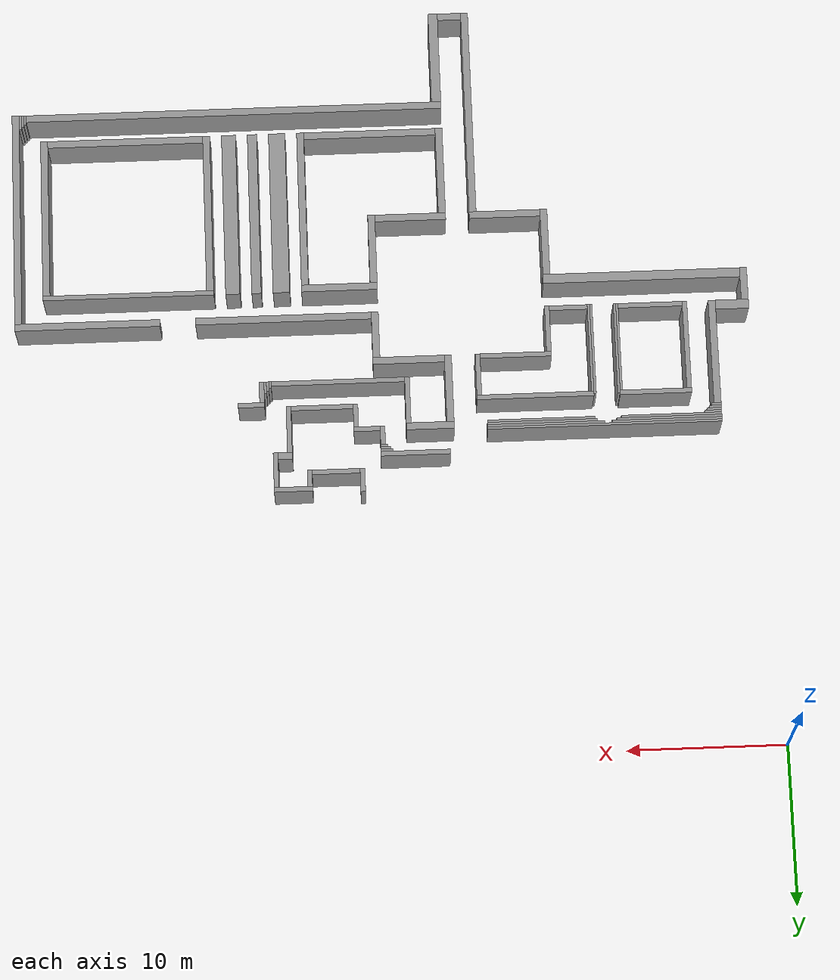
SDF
<sdf version="1.4">
 <model name="FunWorld1">
  <static>1</static>
  <link name="Wall_233">
   <collision name="Wall_233_Collision">
    <geometry><box><size>0.30000 1.50000 3.00000</size></box></geometry>
    <pose>25.65000 -17.55000 0 0 0 0.00000</pose>
   </collision>
   <visual name="Wall_233_Visual">
    <geometry><box><size>0.30000 1.50000 3.00000</size></box></geometry>
    <material>
     <script><uri>file://media/materials/scripts/gazebo.material</uri><name>Gazebo/Grey</name></script>
    </material>
    <pose>25.65000 -17.55000 0 0 0 0.00000</pose>
   </visual>
  </link>
  <link name="Wall_234">
   <collision name="Wall_234_Collision">
    <geometry><box><size>2.40000 0.30000 3.00000</size></box></geometry>
    <pose>30.00000 -17.10000 0 0 0 0.00000</pose>
   </collision>
   <visual name="Wall_234_Visual">
    <geometry><box><size>2.40000 0.30000 3.00000</size></box></geometry>
    <material>
     <script><uri>file://media/materials/scripts/gazebo.material</uri><name>Gazebo/Grey</name></script>
    </material>
    <pose>30.00000 -17.10000 0 0 0 0.00000</pose>
   </visual>
  </link>
  <link name="Wall_235">
   <collision name="Wall_235_Collision">
    <geometry><box><size>0.30000 1.05000 3.00000</size></box></geometry>
    <pose>28.95000 -17.77500 0 0 0 0.00000</pose>
   </collision>
   <visual name="Wall_235_Visual">
    <geometry><box><size>0.30000 1.05000 3.00000</size></box></geometry>
    <material>
     <script><uri>file://media/materials/scripts/gazebo.material</uri><name>Gazebo/Grey</name></script>
    </material>
    <pose>28.95000 -17.77500 0 0 0 0.00000</pose>
   </visual>
  </link>
  <link name="Wall_236">
   <collision name="Wall_236_Collision">
    <geometry><box><size>0.30000 2.25000 3.00000</size></box></geometry>
    <pose>31.05000 -18.37500 0 0 0 0.00000</pose>
   </collision>
   <visual name="Wall_236_Visual">
    <geometry><box><size>0.30000 2.25000 3.00000</size></box></geometry>
    <material>
     <script><uri>file://media/materials/scripts/gazebo.material</uri><name>Gazebo/Grey</name></script>
    </material>
    <pose>31.05000 -18.37500 0 0 0 0.00000</pose>
   </visual>
  </link>
  <link name="Wall_237">
   <collision name="Wall_237_Collision">
    <geometry><box><size>3.00000 0.30000 3.00000</size></box></geometry>
    <pose>27.30000 -18.15000 0 0 0 0.00000</pose>
   </collision>
   <visual name="Wall_237_Visual">
    <geometry><box><size>3.00000 0.30000 3.00000</size></box></geometry>
    <material>
     <script><uri>file://media/materials/scripts/gazebo.material</uri><name>Gazebo/Grey</name></script>
    </material>
    <pose>27.30000 -18.15000 0 0 0 0.00000</pose>
   </visual>
  </link>
  <link name="Wall_238">
   <collision name="Wall_238_Collision">
    <geometry><box><size>4.35000 0.30000 3.00000</size></box></geometry>
    <pose>22.27500 -19.20000 0 0 0 0.00000</pose>
   </collision>
   <visual name="Wall_238_Visual">
    <geometry><box><size>4.35000 0.30000 3.00000</size></box></geometry>
    <material>
     <script><uri>file://media/materials/scripts/gazebo.material</uri><name>Gazebo/Grey</name></script>
    </material>
    <pose>22.27500 -19.20000 0 0 0 0.00000</pose>
   </visual>
  </link>
  <link name="Wall_239">
   <collision name="Wall_239_Collision">
    <geometry><box><size>0.90000 0.45000 3.00000</size></box></geometry>
    <pose>30.45000 -19.27500 0 0 0 0.00000</pose>
   </collision>
   <visual name="Wall_239_Visual">
    <geometry><box><size>0.90000 0.45000 3.00000</size></box></geometry>
    <material>
     <script><uri>file://media/materials/scripts/gazebo.material</uri><name>Gazebo/Grey</name></script>
    </material>
    <pose>30.45000 -19.27500 0 0 0 0.00000</pose>
   </visual>
  </link>
  <link name="Wall_240">
   <collision name="Wall_240_Collision">
    <geometry><box><size>0.75000 0.15000 3.00000</size></box></geometry>
    <pose>24.07500 -19.42500 0 0 0 0.00000</pose>
   </collision>
   <visual name="Wall_240_Visual">
    <geometry><box><size>0.75000 0.15000 3.00000</size></box></geometry>
    <material>
     <script><uri>file://media/materials/scripts/gazebo.material</uri><name>Gazebo/Grey</name></script>
    </material>
    <pose>24.07500 -19.42500 0 0 0 0.00000</pose>
   </visual>
  </link>
  <link name="Wall_241">
   <collision name="Wall_241_Collision">
    <geometry><box><size>0.60000 0.15000 3.00000</size></box></geometry>
    <pose>24.15000 -19.57500 0 0 0 0.00000</pose>
   </collision>
   <visual name="Wall_241_Visual">
    <geometry><box><size>0.60000 0.15000 3.00000</size></box></geometry>
    <material>
     <script><uri>file://media/materials/scripts/gazebo.material</uri><name>Gazebo/Grey</name></script>
    </material>
    <pose>24.15000 -19.57500 0 0 0 0.00000</pose>
   </visual>
  </link>
  <link name="Wall_242">
   <collision name="Wall_242_Collision">
    <geometry><box><size>0.30000 3.00000 3.00000</size></box></geometry>
    <pose>30.15000 -21.00000 0 0 0 0.00000</pose>
   </collision>
   <visual name="Wall_242_Visual">
    <geometry><box><size>0.30000 3.00000 3.00000</size></box></geometry>
    <material>
     <script><uri>file://media/materials/scripts/gazebo.material</uri><name>Gazebo/Grey</name></script>
    </material>
    <pose>30.15000 -21.00000 0 0 0 0.00000</pose>
   </visual>
  </link>
  <link name="Wall_243">
   <collision name="Wall_243_Collision">
    <geometry><box><size>0.45000 0.15000 3.00000</size></box></geometry>
    <pose>24.22500 -19.72500 0 0 0 0.00000</pose>
   </collision>
   <visual name="Wall_243_Visual">
    <geometry><box><size>0.45000 0.15000 3.00000</size></box></geometry>
    <material>
     <script><uri>file://media/materials/scripts/gazebo.material</uri><name>Gazebo/Grey</name></script>
    </material>
    <pose>24.22500 -19.72500 0 0 0 0.00000</pose>
   </visual>
  </link>
  <link name="Wall_244">
   <collision name="Wall_244_Collision">
    <geometry><box><size>0.30000 1.20000 3.00000</size></box></geometry>
    <pose>24.30000 -20.40000 0 0 0 0.00000</pose>
   </collision>
   <visual name="Wall_244_Visual">
    <geometry><box><size>0.30000 1.20000 3.00000</size></box></geometry>
    <material>
     <script><uri>file://media/materials/scripts/gazebo.material</uri><name>Gazebo/Grey</name></script>
    </material>
    <pose>24.30000 -20.40000 0 0 0 0.00000</pose>
   </visual>
  </link>
  <link name="Wall_245">
   <collision name="Wall_245_Collision">
    <geometry><box><size>14.70000 0.15000 3.00000</size></box></geometry>
    <pose>10.35000 -20.62500 0 0 0 0.00000</pose>
   </collision>
   <visual name="Wall_245_Visual">
    <geometry><box><size>14.70000 0.15000 3.00000</size></box></geometry>
    <material>
     <script><uri>file://media/materials/scripts/gazebo.material</uri><name>Gazebo/Grey</name></script>
    </material>
    <pose>10.35000 -20.62500 0 0 0 0.00000</pose>
   </visual>
  </link>
  <link name="Wall_246">
   <collision name="Wall_246_Collision">
    <geometry><box><size>6.90000 0.15000 3.00000</size></box></geometry>
    <pose>6.45000 -20.77500 0 0 0 0.00000</pose>
   </collision>
   <visual name="Wall_246_Visual">
    <geometry><box><size>6.90000 0.15000 3.00000</size></box></geometry>
    <material>
     <script><uri>file://media/materials/scripts/gazebo.material</uri><name>Gazebo/Grey</name></script>
    </material>
    <pose>6.45000 -20.77500 0 0 0 0.00000</pose>
   </visual>
  </link>
  <link name="Wall_247">
   <collision name="Wall_247_Collision">
    <geometry><box><size>7.35000 0.15000 3.00000</size></box></geometry>
    <pose>14.02500 -20.77500 0 0 0 0.00000</pose>
   </collision>
   <visual name="Wall_247_Visual">
    <geometry><box><size>7.35000 0.15000 3.00000</size></box></geometry>
    <material>
     <script><uri>file://media/materials/scripts/gazebo.material</uri><name>Gazebo/Grey</name></script>
    </material>
    <pose>14.02500 -20.77500 0 0 0 0.00000</pose>
   </visual>
  </link>
  <link name="Wall_248">
   <collision name="Wall_248_Collision">
    <geometry><box><size>3.00000 0.45000 3.00000</size></box></geometry>
    <pose>21.30000 -20.92500 0 0 0 0.00000</pose>
   </collision>
   <visual name="Wall_248_Visual">
    <geometry><box><size>3.00000 0.45000 3.00000</size></box></geometry>
    <material>
     <script><uri>file://media/materials/scripts/gazebo.material</uri><name>Gazebo/Grey</name></script>
    </material>
    <pose>21.30000 -20.92500 0 0 0 0.00000</pose>
   </visual>
  </link>
  <link name="Wall_249">
   <collision name="Wall_249_Collision">
    <geometry><box><size>1.65000 0.30000 3.00000</size></box></geometry>
    <pose>25.27500 -20.85000 0 0 0 0.00000</pose>
   </collision>
   <visual name="Wall_249_Visual">
    <geometry><box><size>1.65000 0.30000 3.00000</size></box></geometry>
    <material>
     <script><uri>file://media/materials/scripts/gazebo.material</uri><name>Gazebo/Grey</name></script>
    </material>
    <pose>25.27500 -20.85000 0 0 0 0.00000</pose>
   </visual>
  </link>
  <link name="Wall_250">
   <collision name="Wall_250_Collision">
    <geometry><box><size>6.60000 0.15000 3.00000</size></box></geometry>
    <pose>6.30000 -20.92500 0 0 0 0.00000</pose>
   </collision>
   <visual name="Wall_250_Visual">
    <geometry><box><size>6.60000 0.15000 3.00000</size></box></geometry>
    <material>
     <script><uri>file://media/materials/scripts/gazebo.material</uri><name>Gazebo/Grey</name></script>
    </material>
    <pose>6.30000 -20.92500 0 0 0 0.00000</pose>
   </visual>
  </link>
  <link name="Wall_251">
   <collision name="Wall_251_Collision">
    <geometry><box><size>6.90000 0.15000 3.00000</size></box></geometry>
    <pose>14.25000 -20.92500 0 0 0 0.00000</pose>
   </collision>
   <visual name="Wall_251_Visual">
    <geometry><box><size>6.90000 0.15000 3.00000</size></box></geometry>
    <material>
     <script><uri>file://media/materials/scripts/gazebo.material</uri><name>Gazebo/Grey</name></script>
    </material>
    <pose>14.25000 -20.92500 0 0 0 0.00000</pose>
   </visual>
  </link>
  <link name="Wall_252">
   <collision name="Wall_252_Collision">
    <geometry><box><size>6.30000 0.15000 3.00000</size></box></geometry>
    <pose>6.15000 -21.07500 0 0 0 0.00000</pose>
   </collision>
   <visual name="Wall_252_Visual">
    <geometry><box><size>6.30000 0.15000 3.00000</size></box></geometry>
    <material>
     <script><uri>file://media/materials/scripts/gazebo.material</uri><name>Gazebo/Grey</name></script>
    </material>
    <pose>6.15000 -21.07500 0 0 0 0.00000</pose>
   </visual>
  </link>
  <link name="Wall_253">
   <collision name="Wall_253_Collision">
    <geometry><box><size>6.75000 0.15000 3.00000</size></box></geometry>
    <pose>14.32500 -21.07500 0 0 0 0.00000</pose>
   </collision>
   <visual name="Wall_253_Visual">
    <geometry><box><size>6.75000 0.15000 3.00000</size></box></geometry>
    <material>
     <script><uri>file://media/materials/scripts/gazebo.material</uri><name>Gazebo/Grey</name></script>
    </material>
    <pose>14.32500 -21.07500 0 0 0 0.00000</pose>
   </visual>
  </link>
  <link name="Wall_254">
   <collision name="Wall_254_Collision">
    <geometry><box><size>0.30000 1.50000 3.00000</size></box></geometry>
    <pose>25.95000 -21.75000 0 0 0 0.00000</pose>
   </collision>
   <visual name="Wall_254_Visual">
    <geometry><box><size>0.30000 1.50000 3.00000</size></box></geometry>
    <material>
     <script><uri>file://media/materials/scripts/gazebo.material</uri><name>Gazebo/Grey</name></script>
    </material>
    <pose>25.95000 -21.75000 0 0 0 0.00000</pose>
   </visual>
  </link>
  <link name="Wall_255">
   <collision name="Wall_255_Collision">
    <geometry><box><size>1.05000 0.15000 3.00000</size></box></geometry>
    <pose>3.52500 -21.22500 0 0 0 0.00000</pose>
   </collision>
   <visual name="Wall_255_Visual">
    <geometry><box><size>1.05000 0.15000 3.00000</size></box></geometry>
    <material>
     <script><uri>file://media/materials/scripts/gazebo.material</uri><name>Gazebo/Grey</name></script>
    </material>
    <pose>3.52500 -21.22500 0 0 0 0.00000</pose>
   </visual>
  </link>
  <link name="Wall_256">
   <collision name="Wall_256_Collision">
    <geometry><box><size>0.45000 4.35000 3.00000</size></box></geometry>
    <pose>20.02500 -23.32500 0 0 0 0.00000</pose>
   </collision>
   <visual name="Wall_256_Visual">
    <geometry><box><size>0.45000 4.35000 3.00000</size></box></geometry>
    <material>
     <script><uri>file://media/materials/scripts/gazebo.material</uri><name>Gazebo/Grey</name></script>
    </material>
    <pose>20.02500 -23.32500 0 0 0 0.00000</pose>
   </visual>
  </link>
  <link name="Wall_257">
   <collision name="Wall_257_Collision">
    <geometry><box><size>0.30000 3.00000 3.00000</size></box></geometry>
    <pose>22.65000 -22.65000 0 0 0 0.00000</pose>
   </collision>
   <visual name="Wall_257_Visual">
    <geometry><box><size>0.30000 3.00000 3.00000</size></box></geometry>
    <material>
     <script><uri>file://media/materials/scripts/gazebo.material</uri><name>Gazebo/Grey</name></script>
    </material>
    <pose>22.65000 -22.65000 0 0 0 0.00000</pose>
   </visual>
  </link>
  <link name="Wall_258">
   <collision name="Wall_258_Collision">
    <geometry><box><size>0.90000 0.15000 3.00000</size></box></geometry>
    <pose>3.45000 -21.37500 0 0 0 0.00000</pose>
   </collision>
   <visual name="Wall_258_Visual">
    <geometry><box><size>0.90000 0.15000 3.00000</size></box></geometry>
    <material>
     <script><uri>file://media/materials/scripts/gazebo.material</uri><name>Gazebo/Grey</name></script>
    </material>
    <pose>3.45000 -21.37500 0 0 0 0.00000</pose>
   </visual>
  </link>
  <link name="Wall_259">
   <collision name="Wall_259_Collision">
    <geometry><box><size>0.75000 0.15000 3.00000</size></box></geometry>
    <pose>3.37500 -21.52500 0 0 0 0.00000</pose>
   </collision>
   <visual name="Wall_259_Visual">
    <geometry><box><size>0.75000 0.15000 3.00000</size></box></geometry>
    <material>
     <script><uri>file://media/materials/scripts/gazebo.material</uri><name>Gazebo/Grey</name></script>
    </material>
    <pose>3.37500 -21.52500 0 0 0 0.00000</pose>
   </visual>
  </link>
  <link name="Wall_260">
   <collision name="Wall_260_Collision">
    <geometry><box><size>0.60000 0.15000 3.00000</size></box></geometry>
    <pose>3.30000 -21.67500 0 0 0 0.00000</pose>
   </collision>
   <visual name="Wall_260_Visual">
    <geometry><box><size>0.60000 0.15000 3.00000</size></box></geometry>
    <material>
     <script><uri>file://media/materials/scripts/gazebo.material</uri><name>Gazebo/Grey</name></script>
    </material>
    <pose>3.30000 -21.67500 0 0 0 0.00000</pose>
   </visual>
  </link>
  <link name="Wall_261">
   <collision name="Wall_261_Collision">
    <geometry><box><size>0.45000 6.75000 3.00000</size></box></geometry>
    <pose>3.22500 -25.12500 0 0 0 0.00000</pose>
   </collision>
   <visual name="Wall_261_Visual">
    <geometry><box><size>0.45000 6.75000 3.00000</size></box></geometry>
    <material>
     <script><uri>file://media/materials/scripts/gazebo.material</uri><name>Gazebo/Grey</name></script>
    </material>
    <pose>3.22500 -25.12500 0 0 0 0.00000</pose>
   </visual>
  </link>
  <link name="Wall_262">
   <collision name="Wall_262_Collision">
    <geometry><box><size>3.90000 0.30000 3.00000</size></box></geometry>
    <pose>28.05000 -22.35000 0 0 0 0.00000</pose>
   </collision>
   <visual name="Wall_262_Visual">
    <geometry><box><size>3.90000 0.30000 3.00000</size></box></geometry>
    <material>
     <script><uri>file://media/materials/scripts/gazebo.material</uri><name>Gazebo/Grey</name></script>
    </material>
    <pose>28.05000 -22.35000 0 0 0 0.00000</pose>
   </visual>
  </link>
  <link name="Wall_263">
   <collision name="Wall_263_Collision">
    <geometry><box><size>4.50000 0.30000 3.00000</size></box></geometry>
    <pose>7.05000 -22.65000 0 0 0 0.00000</pose>
   </collision>
   <visual name="Wall_263_Visual">
    <geometry><box><size>4.50000 0.30000 3.00000</size></box></geometry>
    <material>
     <script><uri>file://media/materials/scripts/gazebo.material</uri><name>Gazebo/Grey</name></script>
    </material>
    <pose>7.05000 -22.65000 0 0 0 0.00000</pose>
   </visual>
  </link>
  <link name="Wall_264">
   <collision name="Wall_264_Collision">
    <geometry><box><size>7.35000 0.30000 3.00000</size></box></geometry>
    <pose>14.62500 -22.65000 0 0 0 0.00000</pose>
   </collision>
   <visual name="Wall_264_Visual">
    <geometry><box><size>7.35000 0.30000 3.00000</size></box></geometry>
    <material>
     <script><uri>file://media/materials/scripts/gazebo.material</uri><name>Gazebo/Grey</name></script>
    </material>
    <pose>14.62500 -22.65000 0 0 0 0.00000</pose>
   </visual>
  </link>
  <link name="Wall_265">
   <collision name="Wall_265_Collision">
    <geometry><box><size>1.65000 0.30000 3.00000</size></box></geometry>
    <pose>32.47500 -22.65000 0 0 0 0.00000</pose>
   </collision>
   <visual name="Wall_265_Visual">
    <geometry><box><size>1.65000 0.30000 3.00000</size></box></geometry>
    <material>
     <script><uri>file://media/materials/scripts/gazebo.material</uri><name>Gazebo/Grey</name></script>
    </material>
    <pose>32.47500 -22.65000 0 0 0 0.00000</pose>
   </visual>
  </link>
  <link name="Wall_266">
   <collision name="Wall_266_Collision">
    <geometry><box><size>0.15000 5.85000 3.00000</size></box></geometry>
    <pose>9.37500 -25.57500 0 0 0 0.00000</pose>
   </collision>
   <visual name="Wall_266_Visual">
    <geometry><box><size>0.15000 5.85000 3.00000</size></box></geometry>
    <material>
     <script><uri>file://media/materials/scripts/gazebo.material</uri><name>Gazebo/Grey</name></script>
    </material>
    <pose>9.37500 -25.57500 0 0 0 0.00000</pose>
   </visual>
  </link>
  <link name="Wall_267">
   <collision name="Wall_267_Collision">
    <geometry><box><size>0.15000 5.85000 3.00000</size></box></geometry>
    <pose>10.87500 -25.57500 0 0 0 0.00000</pose>
   </collision>
   <visual name="Wall_267_Visual">
    <geometry><box><size>0.15000 5.85000 3.00000</size></box></geometry>
    <material>
     <script><uri>file://media/materials/scripts/gazebo.material</uri><name>Gazebo/Grey</name></script>
    </material>
    <pose>10.87500 -25.57500 0 0 0 0.00000</pose>
   </visual>
  </link>
  <link name="Wall_268">
   <collision name="Wall_268_Collision">
    <geometry><box><size>0.30000 5.70000 3.00000</size></box></geometry>
    <pose>4.95000 -25.65000 0 0 0 0.00000</pose>
   </collision>
   <visual name="Wall_268_Visual">
    <geometry><box><size>0.30000 5.70000 3.00000</size></box></geometry>
    <material>
     <script><uri>file://media/materials/scripts/gazebo.material</uri><name>Gazebo/Grey</name></script>
    </material>
    <pose>4.95000 -25.65000 0 0 0 0.00000</pose>
   </visual>
  </link>
  <link name="Wall_269">
   <collision name="Wall_269_Collision">
    <geometry><box><size>0.15000 5.70000 3.00000</size></box></geometry>
    <pose>9.22500 -25.65000 0 0 0 0.00000</pose>
   </collision>
   <visual name="Wall_269_Visual">
    <geometry><box><size>0.15000 5.70000 3.00000</size></box></geometry>
    <material>
     <script><uri>file://media/materials/scripts/gazebo.material</uri><name>Gazebo/Grey</name></script>
    </material>
    <pose>9.22500 -25.65000 0 0 0 0.00000</pose>
   </visual>
  </link>
  <link name="Wall_270">
   <collision name="Wall_270_Collision">
    <geometry><box><size>0.15000 5.70000 3.00000</size></box></geometry>
    <pose>11.02500 -25.65000 0 0 0 0.00000</pose>
   </collision>
   <visual name="Wall_270_Visual">
    <geometry><box><size>0.15000 5.70000 3.00000</size></box></geometry>
    <material>
     <script><uri>file://media/materials/scripts/gazebo.material</uri><name>Gazebo/Grey</name></script>
    </material>
    <pose>11.02500 -25.65000 0 0 0 0.00000</pose>
   </visual>
  </link>
  <link name="Wall_271">
   <collision name="Wall_271_Collision">
    <geometry><box><size>0.30000 2.70000 3.00000</size></box></geometry>
    <pose>18.15000 -24.15000 0 0 0 0.00000</pose>
   </collision>
   <visual name="Wall_271_Visual">
    <geometry><box><size>0.30000 2.70000 3.00000</size></box></geometry>
    <material>
     <script><uri>file://media/materials/scripts/gazebo.material</uri><name>Gazebo/Grey</name></script>
    </material>
    <pose>18.15000 -24.15000 0 0 0 0.00000</pose>
   </visual>
  </link>
  <link name="Wall_272">
   <collision name="Wall_272_Collision">
    <geometry><box><size>0.30000 1.35000 3.00000</size></box></geometry>
    <pose>31.80000 -23.47500 0 0 0 0.00000</pose>
   </collision>
   <visual name="Wall_272_Visual">
    <geometry><box><size>0.30000 1.35000 3.00000</size></box></geometry>
    <material>
     <script><uri>file://media/materials/scripts/gazebo.material</uri><name>Gazebo/Grey</name></script>
    </material>
    <pose>31.80000 -23.47500 0 0 0 0.00000</pose>
   </visual>
  </link>
  <link name="Wall_273">
   <collision name="Wall_273_Collision">
    <geometry><box><size>0.15000 0.75000 3.00000</size></box></geometry>
    <pose>31.57500 -23.77500 0 0 0 0.00000</pose>
   </collision>
   <visual name="Wall_273_Visual">
    <geometry><box><size>0.15000 0.75000 3.00000</size></box></geometry>
    <material>
     <script><uri>file://media/materials/scripts/gazebo.material</uri><name>Gazebo/Grey</name></script>
    </material>
    <pose>31.57500 -23.77500 0 0 0 0.00000</pose>
   </visual>
  </link>
  <link name="Wall_274">
   <collision name="Wall_274_Collision">
    <geometry><box><size>0.15000 0.60000 3.00000</size></box></geometry>
    <pose>31.42500 -23.85000 0 0 0 0.00000</pose>
   </collision>
   <visual name="Wall_274_Visual">
    <geometry><box><size>0.15000 0.60000 3.00000</size></box></geometry>
    <material>
     <script><uri>file://media/materials/scripts/gazebo.material</uri><name>Gazebo/Grey</name></script>
    </material>
    <pose>31.42500 -23.85000 0 0 0 0.00000</pose>
   </visual>
  </link>
  <link name="Wall_275">
   <collision name="Wall_275_Collision">
    <geometry><box><size>0.15000 0.45000 3.00000</size></box></geometry>
    <pose>31.27500 -23.92500 0 0 0 0.00000</pose>
   </collision>
   <visual name="Wall_275_Visual">
    <geometry><box><size>0.15000 0.45000 3.00000</size></box></geometry>
    <material>
     <script><uri>file://media/materials/scripts/gazebo.material</uri><name>Gazebo/Grey</name></script>
    </material>
    <pose>31.27500 -23.92500 0 0 0 0.00000</pose>
   </visual>
  </link>
  <link name="Wall_276">
   <collision name="Wall_276_Collision">
    <geometry><box><size>8.40000 0.30000 3.00000</size></box></geometry>
    <pose>27.00000 -24.00000 0 0 0 0.00000</pose>
   </collision>
   <visual name="Wall_276_Visual">
    <geometry><box><size>8.40000 0.30000 3.00000</size></box></geometry>
    <material>
     <script><uri>file://media/materials/scripts/gazebo.material</uri><name>Gazebo/Grey</name></script>
    </material>
    <pose>27.00000 -24.00000 0 0 0 0.00000</pose>
   </visual>
  </link>
  <link name="Wall_277">
   <collision name="Wall_277_Collision">
    <geometry><box><size>4.50000 0.45000 3.00000</size></box></geometry>
    <pose>22.50000 -25.27500 0 0 0 0.00000</pose>
   </collision>
   <visual name="Wall_277_Visual">
    <geometry><box><size>4.50000 0.45000 3.00000</size></box></geometry>
    <material>
     <script><uri>file://media/materials/scripts/gazebo.material</uri><name>Gazebo/Grey</name></script>
    </material>
    <pose>22.50000 -25.27500 0 0 0 0.00000</pose>
   </visual>
  </link>
  <link name="Wall_278">
   <collision name="Wall_278_Collision">
    <geometry><box><size>4.50000 0.30000 3.00000</size></box></geometry>
    <pose>15.75000 -25.35000 0 0 0 0.00000</pose>
   </collision>
   <visual name="Wall_278_Visual">
    <geometry><box><size>4.50000 0.30000 3.00000</size></box></geometry>
    <material>
     <script><uri>file://media/materials/scripts/gazebo.material</uri><name>Gazebo/Grey</name></script>
    </material>
    <pose>15.75000 -25.35000 0 0 0 0.00000</pose>
   </visual>
  </link>
  <link name="Wall_279">
   <collision name="Wall_279_Collision">
    <geometry><box><size>0.30000 3.00000 3.00000</size></box></geometry>
    <pose>13.65000 -27.00000 0 0 0 0.00000</pose>
   </collision>
   <visual name="Wall_279_Visual">
    <geometry><box><size>0.30000 3.00000 3.00000</size></box></geometry>
    <material>
     <script><uri>file://media/materials/scripts/gazebo.material</uri><name>Gazebo/Grey</name></script>
    </material>
    <pose>13.65000 -27.00000 0 0 0 0.00000</pose>
   </visual>
  </link>
  <link name="Wall_280">
   <collision name="Wall_280_Collision">
    <geometry><box><size>0.45000 3.00000 3.00000</size></box></geometry>
    <pose>24.52500 -27.00000 0 0 0 0.00000</pose>
   </collision>
   <visual name="Wall_280_Visual">
    <geometry><box><size>0.45000 3.00000 3.00000</size></box></geometry>
    <material>
     <script><uri>file://media/materials/scripts/gazebo.material</uri><name>Gazebo/Grey</name></script>
    </material>
    <pose>24.52500 -27.00000 0 0 0 0.00000</pose>
   </visual>
  </link>
  <link name="Wall_281">
   <collision name="Wall_281_Collision">
    <geometry><box><size>2.10000 0.60000 3.00000</size></box></geometry>
    <pose>1.95000 -28.20000 0 0 0 0.00000</pose>
   </collision>
   <visual name="Wall_281_Visual">
    <geometry><box><size>2.10000 0.60000 3.00000</size></box></geometry>
    <material>
     <script><uri>file://media/materials/scripts/gazebo.material</uri><name>Gazebo/Grey</name></script>
    </material>
    <pose>1.95000 -28.20000 0 0 0 0.00000</pose>
   </visual>
  </link>
  <link name="Wall_282">
   <collision name="Wall_282_Collision">
    <geometry><box><size>11.10000 0.45000 3.00000</size></box></geometry>
    <pose>30.30000 -28.27500 0 0 0 0.00000</pose>
   </collision>
   <visual name="Wall_282_Visual">
    <geometry><box><size>11.10000 0.45000 3.00000</size></box></geometry>
    <material>
     <script><uri>file://media/materials/scripts/gazebo.material</uri><name>Gazebo/Grey</name></script>
    </material>
    <pose>30.30000 -28.27500 0 0 0 0.00000</pose>
   </visual>
  </link>
  <link name="Wall_283">
   <collision name="Wall_283_Collision">
    <geometry><box><size>9.15000 0.45000 3.00000</size></box></geometry>
    <pose>42.67500 -28.27500 0 0 0 0.00000</pose>
   </collision>
   <visual name="Wall_283_Visual">
    <geometry><box><size>9.15000 0.45000 3.00000</size></box></geometry>
    <material>
     <script><uri>file://media/materials/scripts/gazebo.material</uri><name>Gazebo/Grey</name></script>
    </material>
    <pose>42.67500 -28.27500 0 0 0 0.00000</pose>
   </visual>
  </link>
  <link name="Wall_284">
   <collision name="Wall_284_Collision">
    <geometry><box><size>4.05000 0.30000 3.00000</size></box></geometry>
    <pose>7.12500 -28.35000 0 0 0 0.00000</pose>
   </collision>
   <visual name="Wall_284_Visual">
    <geometry><box><size>4.05000 0.30000 3.00000</size></box></geometry>
    <material>
     <script><uri>file://media/materials/scripts/gazebo.material</uri><name>Gazebo/Grey</name></script>
    </material>
    <pose>7.12500 -28.35000 0 0 0 0.00000</pose>
   </visual>
  </link>
  <link name="Wall_285">
   <collision name="Wall_285_Collision">
    <geometry><box><size>2.40000 0.30000 3.00000</size></box></geometry>
    <pose>12.30000 -28.35000 0 0 0 0.00000</pose>
   </collision>
   <visual name="Wall_285_Visual">
    <geometry><box><size>2.40000 0.30000 3.00000</size></box></geometry>
    <material>
     <script><uri>file://media/materials/scripts/gazebo.material</uri><name>Gazebo/Grey</name></script>
    </material>
    <pose>12.30000 -28.35000 0 0 0 0.00000</pose>
   </visual>
  </link>
  <link name="Wall_286">
   <collision name="Wall_286_Collision">
    <geometry><box><size>0.45000 2.10000 3.00000</size></box></geometry>
    <pose>1.12500 -29.55000 0 0 0 0.00000</pose>
   </collision>
   <visual name="Wall_286_Visual">
    <geometry><box><size>0.45000 2.10000 3.00000</size></box></geometry>
    <material>
     <script><uri>file://media/materials/scripts/gazebo.material</uri><name>Gazebo/Grey</name></script>
    </material>
    <pose>1.12500 -29.55000 0 0 0 0.00000</pose>
   </visual>
  </link>
  <link name="Wall_287">
   <collision name="Wall_287_Collision">
    <geometry><box><size>0.45000 13.95000 3.00000</size></box></geometry>
    <pose>47.02500 -35.47500 0 0 0 0.00000</pose>
   </collision>
   <visual name="Wall_287_Visual">
    <geometry><box><size>0.45000 13.95000 3.00000</size></box></geometry>
    <material>
     <script><uri>file://media/materials/scripts/gazebo.material</uri><name>Gazebo/Grey</name></script>
    </material>
    <pose>47.02500 -35.47500 0 0 0 0.00000</pose>
   </visual>
  </link>
  <link name="Wall_288">
   <collision name="Wall_288_Collision">
    <geometry><box><size>12.45000 0.60000 3.00000</size></box></geometry>
    <pose>7.57500 -30.30000 0 0 0 0.00000</pose>
   </collision>
   <visual name="Wall_288_Visual">
    <geometry><box><size>12.45000 0.60000 3.00000</size></box></geometry>
    <material>
     <script><uri>file://media/materials/scripts/gazebo.material</uri><name>Gazebo/Grey</name></script>
    </material>
    <pose>7.57500 -30.30000 0 0 0 0.00000</pose>
   </visual>
  </link>
  <link name="Wall_289">
   <collision name="Wall_289_Collision">
    <geometry><box><size>4.80000 0.45000 3.00000</size></box></geometry>
    <pose>26.70000 -30.22500 0 0 0 0.00000</pose>
   </collision>
   <visual name="Wall_289_Visual">
    <geometry><box><size>4.80000 0.45000 3.00000</size></box></geometry>
    <material>
     <script><uri>file://media/materials/scripts/gazebo.material</uri><name>Gazebo/Grey</name></script>
    </material>
    <pose>26.70000 -30.22500 0 0 0 0.00000</pose>
   </visual>
  </link>
  <link name="Wall_290">
   <collision name="Wall_290_Collision">
    <geometry><box><size>1.05000 10.65000 3.00000</size></box></geometry>
    <pose>30.37500 -35.32500 0 0 0 0.00000</pose>
   </collision>
   <visual name="Wall_290_Visual">
    <geometry><box><size>1.05000 10.65000 3.00000</size></box></geometry>
    <material>
     <script><uri>file://media/materials/scripts/gazebo.material</uri><name>Gazebo/Grey</name></script>
    </material>
    <pose>30.37500 -35.32500 0 0 0 0.00000</pose>
   </visual>
  </link>
  <link name="Wall_291">
   <collision name="Wall_291_Collision">
    <geometry><box><size>0.60000 10.65000 3.00000</size></box></geometry>
    <pose>31.95000 -35.32500 0 0 0 0.00000</pose>
   </collision>
   <visual name="Wall_291_Visual">
    <geometry><box><size>0.60000 10.65000 3.00000</size></box></geometry>
    <material>
     <script><uri>file://media/materials/scripts/gazebo.material</uri><name>Gazebo/Grey</name></script>
    </material>
    <pose>31.95000 -35.32500 0 0 0 0.00000</pose>
   </visual>
  </link>
  <link name="Wall_292">
   <collision name="Wall_292_Collision">
    <geometry><box><size>0.90000 10.65000 3.00000</size></box></geometry>
    <pose>33.45000 -35.32500 0 0 0 0.00000</pose>
   </collision>
   <visual name="Wall_292_Visual">
    <geometry><box><size>0.90000 10.65000 3.00000</size></box></geometry>
    <material>
     <script><uri>file://media/materials/scripts/gazebo.material</uri><name>Gazebo/Grey</name></script>
    </material>
    <pose>33.45000 -35.32500 0 0 0 0.00000</pose>
   </visual>
  </link>
  <link name="Wall_293">
   <collision name="Wall_293_Collision">
    <geometry><box><size>10.80000 0.30000 3.00000</size></box></geometry>
    <pose>40.05000 -30.15000 0 0 0 0.00000</pose>
   </collision>
   <visual name="Wall_293_Visual">
    <geometry><box><size>10.80000 0.30000 3.00000</size></box></geometry>
    <material>
     <script><uri>file://media/materials/scripts/gazebo.material</uri><name>Gazebo/Grey</name></script>
    </material>
    <pose>40.05000 -30.15000 0 0 0 0.00000</pose>
   </visual>
  </link>
  <link name="Wall_294">
   <collision name="Wall_294_Collision">
    <geometry><box><size>0.45000 10.35000 3.00000</size></box></geometry>
    <pose>34.87500 -35.47500 0 0 0 0.00000</pose>
   </collision>
   <visual name="Wall_294_Visual">
    <geometry><box><size>0.45000 10.35000 3.00000</size></box></geometry>
    <material>
     <script><uri>file://media/materials/scripts/gazebo.material</uri><name>Gazebo/Grey</name></script>
    </material>
    <pose>34.87500 -35.47500 0 0 0 0.00000</pose>
   </visual>
  </link>
  <link name="Wall_295">
   <collision name="Wall_295_Collision">
    <geometry><box><size>0.45000 10.35000 3.00000</size></box></geometry>
    <pose>45.22500 -35.47500 0 0 0 0.00000</pose>
   </collision>
   <visual name="Wall_295_Visual">
    <geometry><box><size>0.45000 10.35000 3.00000</size></box></geometry>
    <material>
     <script><uri>file://media/materials/scripts/gazebo.material</uri><name>Gazebo/Grey</name></script>
    </material>
    <pose>45.22500 -35.47500 0 0 0 0.00000</pose>
   </visual>
  </link>
  <link name="Wall_296">
   <collision name="Wall_296_Collision">
    <geometry><box><size>0.45000 4.50000 3.00000</size></box></geometry>
    <pose>24.52500 -32.70000 0 0 0 0.00000</pose>
   </collision>
   <visual name="Wall_296_Visual">
    <geometry><box><size>0.45000 4.50000 3.00000</size></box></geometry>
    <material>
     <script><uri>file://media/materials/scripts/gazebo.material</uri><name>Gazebo/Grey</name></script>
    </material>
    <pose>24.52500 -32.70000 0 0 0 0.00000</pose>
   </visual>
  </link>
  <link name="Wall_297">
   <collision name="Wall_297_Collision">
    <geometry><box><size>0.45000 10.20000 3.00000</size></box></geometry>
    <pose>28.87500 -35.55000 0 0 0 0.00000</pose>
   </collision>
   <visual name="Wall_297_Visual">
    <geometry><box><size>0.45000 10.20000 3.00000</size></box></geometry>
    <material>
     <script><uri>file://media/materials/scripts/gazebo.material</uri><name>Gazebo/Grey</name></script>
    </material>
    <pose>28.87500 -35.55000 0 0 0 0.00000</pose>
   </visual>
  </link>
  <link name="Wall_298">
   <collision name="Wall_298_Collision">
    <geometry><box><size>0.45000 4.35000 3.00000</size></box></geometry>
    <pose>13.57500 -32.77500 0 0 0 0.00000</pose>
   </collision>
   <visual name="Wall_298_Visual">
    <geometry><box><size>0.45000 4.35000 3.00000</size></box></geometry>
    <material>
     <script><uri>file://media/materials/scripts/gazebo.material</uri><name>Gazebo/Grey</name></script>
    </material>
    <pose>13.57500 -32.77500 0 0 0 0.00000</pose>
   </visual>
  </link>
  <link name="Wall_299">
   <collision name="Wall_299_Collision">
    <geometry><box><size>4.50000 0.45000 3.00000</size></box></geometry>
    <pose>16.05000 -34.72500 0 0 0 0.00000</pose>
   </collision>
   <visual name="Wall_299_Visual">
    <geometry><box><size>4.50000 0.45000 3.00000</size></box></geometry>
    <material>
     <script><uri>file://media/materials/scripts/gazebo.material</uri><name>Gazebo/Grey</name></script>
    </material>
    <pose>16.05000 -34.72500 0 0 0 0.00000</pose>
   </visual>
  </link>
  <link name="Wall_300">
   <collision name="Wall_300_Collision">
    <geometry><box><size>4.50000 0.45000 3.00000</size></box></geometry>
    <pose>22.05000 -34.72500 0 0 0 0.00000</pose>
   </collision>
   <visual name="Wall_300_Visual">
    <geometry><box><size>4.50000 0.45000 3.00000</size></box></geometry>
    <material>
     <script><uri>file://media/materials/scripts/gazebo.material</uri><name>Gazebo/Grey</name></script>
    </material>
    <pose>22.05000 -34.72500 0 0 0 0.00000</pose>
   </visual>
  </link>
  <link name="Wall_301">
   <collision name="Wall_301_Collision">
    <geometry><box><size>0.45000 13.50000 3.00000</size></box></geometry>
    <pose>18.07500 -41.70000 0 0 0 0.00000</pose>
   </collision>
   <visual name="Wall_301_Visual">
    <geometry><box><size>0.45000 13.50000 3.00000</size></box></geometry>
    <material>
     <script><uri>file://media/materials/scripts/gazebo.material</uri><name>Gazebo/Grey</name></script>
    </material>
    <pose>18.07500 -41.70000 0 0 0 0.00000</pose>
   </visual>
  </link>
  <link name="Wall_302">
   <collision name="Wall_302_Collision">
    <geometry><box><size>0.45000 5.70000 3.00000</size></box></geometry>
    <pose>20.02500 -37.80000 0 0 0 0.00000</pose>
   </collision>
   <visual name="Wall_302_Visual">
    <geometry><box><size>0.45000 5.70000 3.00000</size></box></geometry>
    <material>
     <script><uri>file://media/materials/scripts/gazebo.material</uri><name>Gazebo/Grey</name></script>
    </material>
    <pose>20.02500 -37.80000 0 0 0 0.00000</pose>
   </visual>
  </link>
  <link name="Wall_303">
   <collision name="Wall_303_Collision">
    <geometry><box><size>8.40000 0.45000 3.00000</size></box></geometry>
    <pose>24.45000 -40.42500 0 0 0 0.00000</pose>
   </collision>
   <visual name="Wall_303_Visual">
    <geometry><box><size>8.40000 0.45000 3.00000</size></box></geometry>
    <material>
     <script><uri>file://media/materials/scripts/gazebo.material</uri><name>Gazebo/Grey</name></script>
    </material>
    <pose>24.45000 -40.42500 0 0 0 0.00000</pose>
   </visual>
  </link>
  <link name="Wall_304">
   <collision name="Wall_304_Collision">
    <geometry><box><size>9.90000 0.45000 3.00000</size></box></geometry>
    <pose>40.05000 -40.42500 0 0 0 0.00000</pose>
   </collision>
   <visual name="Wall_304_Visual">
    <geometry><box><size>9.90000 0.45000 3.00000</size></box></geometry>
    <material>
     <script><uri>file://media/materials/scripts/gazebo.material</uri><name>Gazebo/Grey</name></script>
    </material>
    <pose>40.05000 -40.42500 0 0 0 0.00000</pose>
   </visual>
  </link>
  <link name="Wall_305">
   <collision name="Wall_305_Collision">
    <geometry><box><size>0.15000 0.90000 3.00000</size></box></geometry>
    <pose>46.72500 -42.00000 0 0 0 0.00000</pose>
   </collision>
   <visual name="Wall_305_Visual">
    <geometry><box><size>0.15000 0.90000 3.00000</size></box></geometry>
    <material>
     <script><uri>file://media/materials/scripts/gazebo.material</uri><name>Gazebo/Grey</name></script>
    </material>
    <pose>46.72500 -42.00000 0 0 0 0.00000</pose>
   </visual>
  </link>
  <link name="Wall_306">
   <collision name="Wall_306_Collision">
    <geometry><box><size>0.15000 0.75000 3.00000</size></box></geometry>
    <pose>46.57500 -42.07500 0 0 0 0.00000</pose>
   </collision>
   <visual name="Wall_306_Visual">
    <geometry><box><size>0.15000 0.75000 3.00000</size></box></geometry>
    <material>
     <script><uri>file://media/materials/scripts/gazebo.material</uri><name>Gazebo/Grey</name></script>
    </material>
    <pose>46.57500 -42.07500 0 0 0 0.00000</pose>
   </visual>
  </link>
  <link name="Wall_307">
   <collision name="Wall_307_Collision">
    <geometry><box><size>0.15000 0.60000 3.00000</size></box></geometry>
    <pose>46.42500 -42.15000 0 0 0 0.00000</pose>
   </collision>
   <visual name="Wall_307_Visual">
    <geometry><box><size>0.15000 0.60000 3.00000</size></box></geometry>
    <material>
     <script><uri>file://media/materials/scripts/gazebo.material</uri><name>Gazebo/Grey</name></script>
    </material>
    <pose>46.42500 -42.15000 0 0 0 0.00000</pose>
   </visual>
  </link>
  <link name="Wall_308">
   <collision name="Wall_308_Collision">
    <geometry><box><size>26.55000 0.45000 3.00000</size></box></geometry>
    <pose>33.07500 -42.22500 0 0 0 0.00000</pose>
   </collision>
   <visual name="Wall_308_Visual">
    <geometry><box><size>26.55000 0.45000 3.00000</size></box></geometry>
    <material>
     <script><uri>file://media/materials/scripts/gazebo.material</uri><name>Gazebo/Grey</name></script>
    </material>
    <pose>33.07500 -42.22500 0 0 0 0.00000</pose>
   </visual>
  </link>
  <link name="Wall_309">
   <collision name="Wall_309_Collision">
    <geometry><box><size>0.60000 6.00000 3.00000</size></box></geometry>
    <pose>20.10000 -45.45000 0 0 0 0.00000</pose>
   </collision>
   <visual name="Wall_309_Visual">
    <geometry><box><size>0.60000 6.00000 3.00000</size></box></geometry>
    <material>
     <script><uri>file://media/materials/scripts/gazebo.material</uri><name>Gazebo/Grey</name></script>
    </material>
    <pose>20.10000 -45.45000 0 0 0 0.00000</pose>
   </visual>
  </link>
  <link name="Wall_310">
   <collision name="Wall_310_Collision">
    <geometry><box><size>1.50000 0.45000 3.00000</size></box></geometry>
    <pose>19.05000 -48.22500 0 0 0 0.00000</pose>
   </collision>
   <visual name="Wall_310_Visual">
    <geometry><box><size>1.50000 0.45000 3.00000</size></box></geometry>
    <material>
     <script><uri>file://media/materials/scripts/gazebo.material</uri><name>Gazebo/Grey</name></script>
    </material>
    <pose>19.05000 -48.22500 0 0 0 0.00000</pose>
   </visual>
  </link>
 </model>
</sdf>
